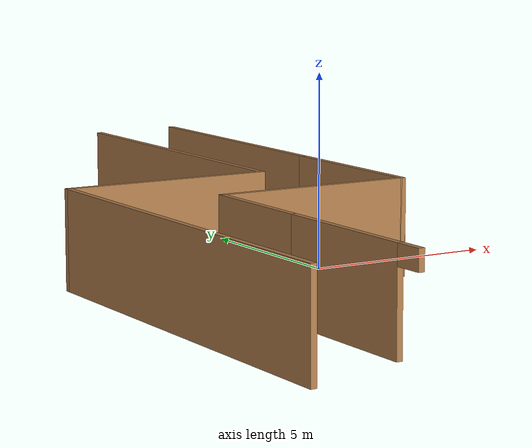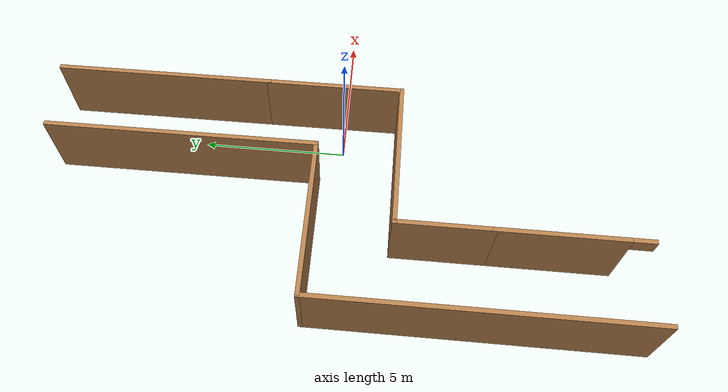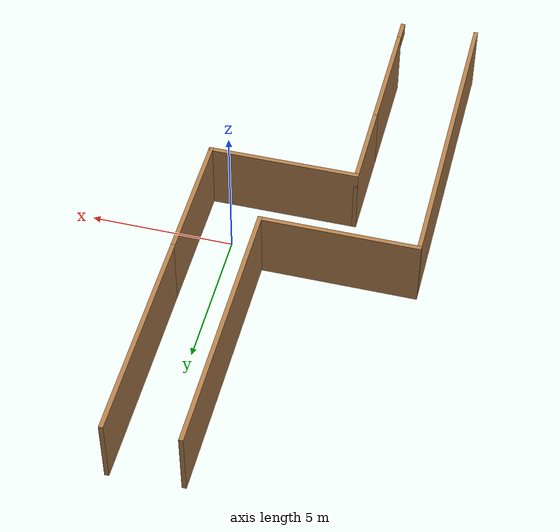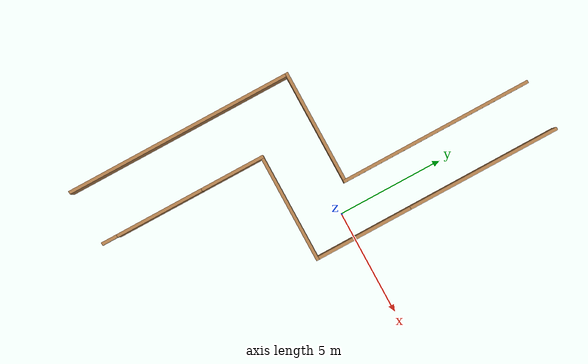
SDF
<?xml version='1.0'?>
<sdf version='1.7'>
  <model name='maze'>
    <pose>-2.67986 0.00787 0 0 -0 0</pose>
    <link name='Wall_10'>
      <collision name='Wall_10_Collision'>
        <geometry>
          <box>
            <size>9.25 0.15 2.5</size>
          </box>
        </geometry>
        <pose>0 0 1.25 0 -0 0</pose>
      </collision>
      <visual name='Wall_10_Visual'>
        <pose>0 0 1.25 0 -0 0</pose>
        <geometry>
          <box>
            <size>9.25 0.15 2.5</size>
          </box>
        </geometry>
        <material>
          <script>
            <uri>file://media/materials/scripts/gazebo.material</uri>
            <name>Gazebo/Wood</name>
          </script>
          <ambient>1 1 1 1</ambient>
        </material>
        <meta>
          <layer>0</layer>
        </meta>
      </visual>
      <pose>1.46014 5.35787 0 0 -0 -1.5708</pose>
    </link>
    <link name='Wall_11'>
      <collision name='Wall_11_Collision'>
        <geometry>
          <box>
            <size>5.5 0.15 2.5</size>
          </box>
        </geometry>
        <pose>0 0 1.25 0 -0 0</pose>
      </collision>
      <visual name='Wall_11_Visual'>
        <pose>0 0 1.25 0 -0 0</pose>
        <geometry>
          <box>
            <size>5.5 0.15 2.5</size>
          </box>
        </geometry>
        <material>
          <script>
            <uri>file://media/materials/scripts/gazebo.material</uri>
            <name>Gazebo/Wood</name>
          </script>
          <ambient>1 1 1 1</ambient>
        </material>
        <meta>
          <layer>0</layer>
        </meta>
      </visual>
      <pose>-1.21486 0.80787 0 0 -0 3.14159</pose>
    </link>
    <link name='Wall_12'>
      <collision name='Wall_12_Collision'>
        <geometry>
          <box>
            <size>11 0.15 2.5</size>
          </box>
        </geometry>
        <pose>0 0 1.25 0 -0 0</pose>
      </collision>
      <visual name='Wall_12_Visual'>
        <pose>0 0 1.25 0 -0 0</pose>
        <geometry>
          <box>
            <size>11 0.15 2.5</size>
          </box>
        </geometry>
        <material>
          <script>
            <uri>file://media/materials/scripts/gazebo.material</uri>
            <name>Gazebo/Wood</name>
          </script>
          <ambient>1 1 1 1</ambient>
        </material>
        <meta>
          <layer>0</layer>
        </meta>
      </visual>
      <pose>-3.88986 -4.61713 0 0 -0 -1.5708</pose>
    </link>
    <link name='Wall_14'>
      <pose>-1.21014 -7.43287 0 0 -0 -1.5708</pose>
      <visual name='Wall_14_Visual_0'>
        <pose>-0.375348 0 1.25 0 -0 0</pose>
        <geometry>
          <box>
            <size>4.2493 0.15 2.5</size>
          </box>
        </geometry>
        <material>
          <script>
            <uri>file://media/materials/scripts/gazebo.material</uri>
            <name>Gazebo/Wood</name>
          </script>
          <ambient>1 1 1 1</ambient>
        </material>
        <meta>
          <layer>0</layer>
        </meta>
      </visual>
      <collision name='Wall_14_Collision_0'>
        <geometry>
          <box>
            <size>4.2493 0.15 2.5</size>
          </box>
        </geometry>
        <pose>-0.375348 0 1.25 0 -0 0</pose>
      </collision>
      <visual name='Wall_14_Visual_1'>
        <pose>2.12465 0 2.25 0 -0 0</pose>
        <geometry>
          <box>
            <size>0.750695 0.15 0.5</size>
          </box>
        </geometry>
        <material>
          <script>
            <uri>file://media/materials/scripts/gazebo.material</uri>
            <name>Gazebo/Wood</name>
          </script>
          <ambient>1 1 1 1</ambient>
        </material>
        <meta>
          <layer>0</layer>
        </meta>
      </visual>
      <collision name='Wall_14_Collision_1'>
        <geometry>
          <box>
            <size>0.750695 0.15 0.5</size>
          </box>
        </geometry>
        <pose>2.12465 0 2.25 0 -0 0</pose>
      </collision>
    </link>
    <link name='Wall_2'>
      <collision name='Wall_2_Collision'>
        <geometry>
          <box>
            <size>3.25 0.15 2.5</size>
          </box>
        </geometry>
        <pose>0 0 1.25 0 -0 0</pose>
      </collision>
      <visual name='Wall_2_Visual'>
        <pose>0 0 1.25 0 -0 0</pose>
        <geometry>
          <box>
            <size>3.25 0.15 2.5</size>
          </box>
        </geometry>
        <material>
          <script>
            <uri>file://media/materials/scripts/gazebo.material</uri>
            <name>Gazebo/Wood</name>
          </script>
          <ambient>1 1 1 1</ambient>
        </material>
        <meta>
          <layer>0</layer>
        </meta>
      </visual>
      <pose>-1.21014 -3.45787 0 0 -0 1.5708</pose>
    </link>
    <link name='Wall_3'>
      <collision name='Wall_3_Collision'>
        <geometry>
          <box>
            <size>5.25 0.15 2.5</size>
          </box>
        </geometry>
        <pose>0 0 1.25 0 -0 0</pose>
      </collision>
      <visual name='Wall_3_Visual'>
        <pose>0 0 1.25 0 -0 0</pose>
        <geometry>
          <box>
            <size>5.25 0.15 2.5</size>
          </box>
        </geometry>
        <material>
          <script>
            <uri>file://media/materials/scripts/gazebo.material</uri>
            <name>Gazebo/Wood</name>
          </script>
          <ambient>1 1 1 1</ambient>
        </material>
        <meta>
          <layer>0</layer>
        </meta>
      </visual>
      <pose>1.33986 -1.90787 0 0 -0 0</pose>
    </link>
    <link name='Wall_5'>
      <collision name='Wall_5_Collision'>
        <geometry>
          <box>
            <size>4.75 0.15 2.5</size>
          </box>
        </geometry>
        <pose>0 0 1.25 0 -0 0</pose>
      </collision>
      <visual name='Wall_5_Visual'>
        <pose>0 0 1.25 0 -0 0</pose>
        <geometry>
          <box>
            <size>4.75 0.15 2.5</size>
          </box>
        </geometry>
        <material>
          <script>
            <uri>file://media/materials/scripts/gazebo.material</uri>
            <name>Gazebo/Wood</name>
          </script>
          <ambient>1 1 1 1</ambient>
        </material>
        <meta>
          <layer>0</layer>
        </meta>
      </visual>
      <pose>3.88986 0.39213 0 0 -0 1.5708</pose>
    </link>
    <link name='Wall_6'>
      <collision name='Wall_6_Collision'>
        <geometry>
          <box>
            <size>7.5 0.15 2.5</size>
          </box>
        </geometry>
        <pose>0 0 1.25 0 -0 0</pose>
      </collision>
      <visual name='Wall_6_Visual'>
        <pose>0 0 1.25 0 -0 0</pose>
        <geometry>
          <box>
            <size>7.5 0.15 2.5</size>
          </box>
        </geometry>
        <material>
          <script>
            <uri>file://media/materials/scripts/gazebo.material</uri>
            <name>Gazebo/Wood</name>
          </script>
          <ambient>1 1 1 1</ambient>
        </material>
        <meta>
          <layer>0</layer>
        </meta>
      </visual>
      <pose>3.88986 6.36713 0 0 -0 1.5708</pose>
    </link>
    <static>1</static>
  </model>
</sdf>
